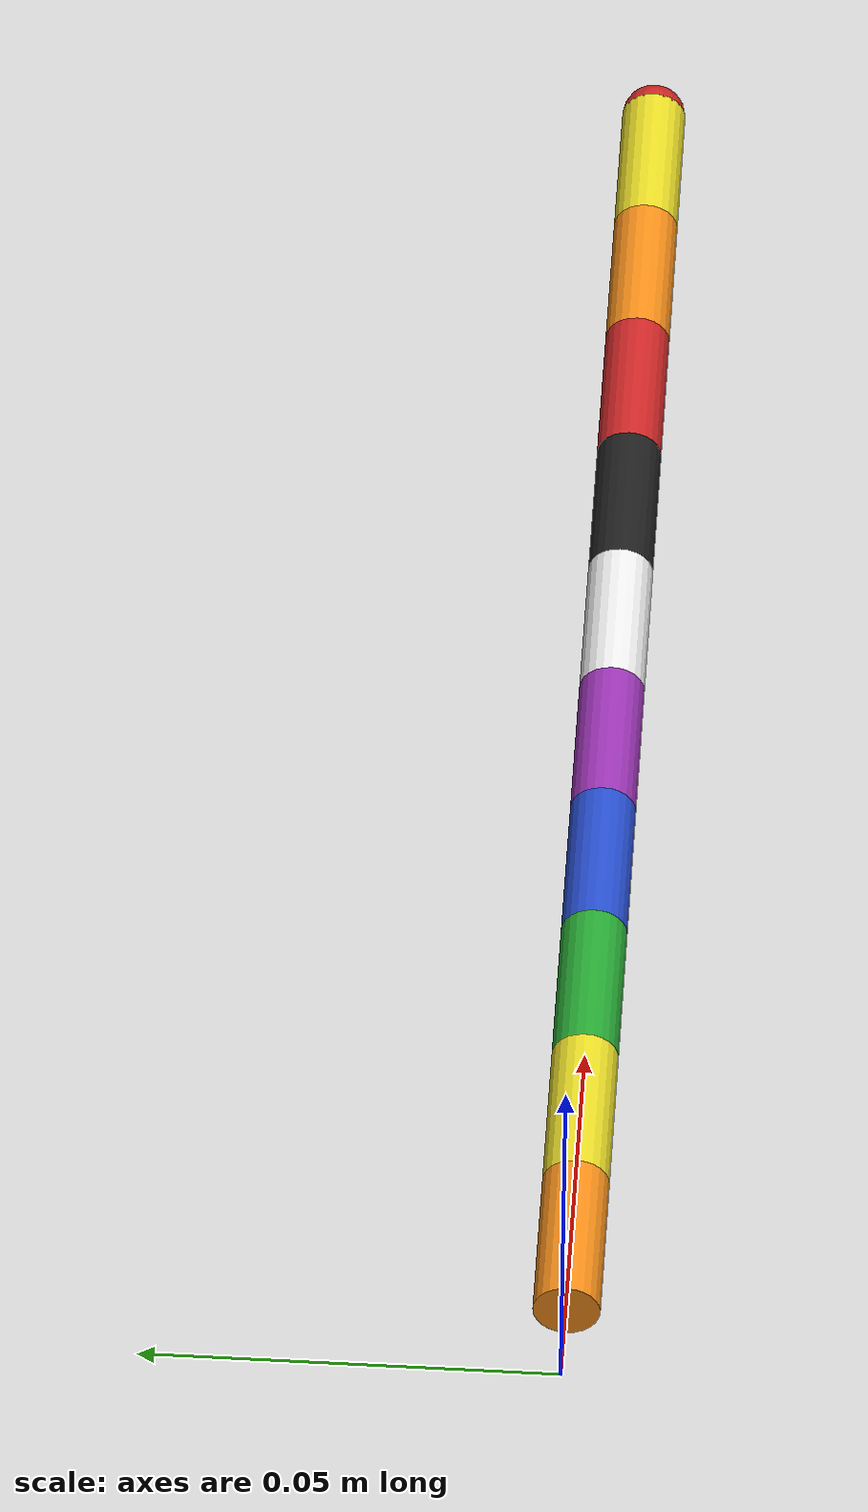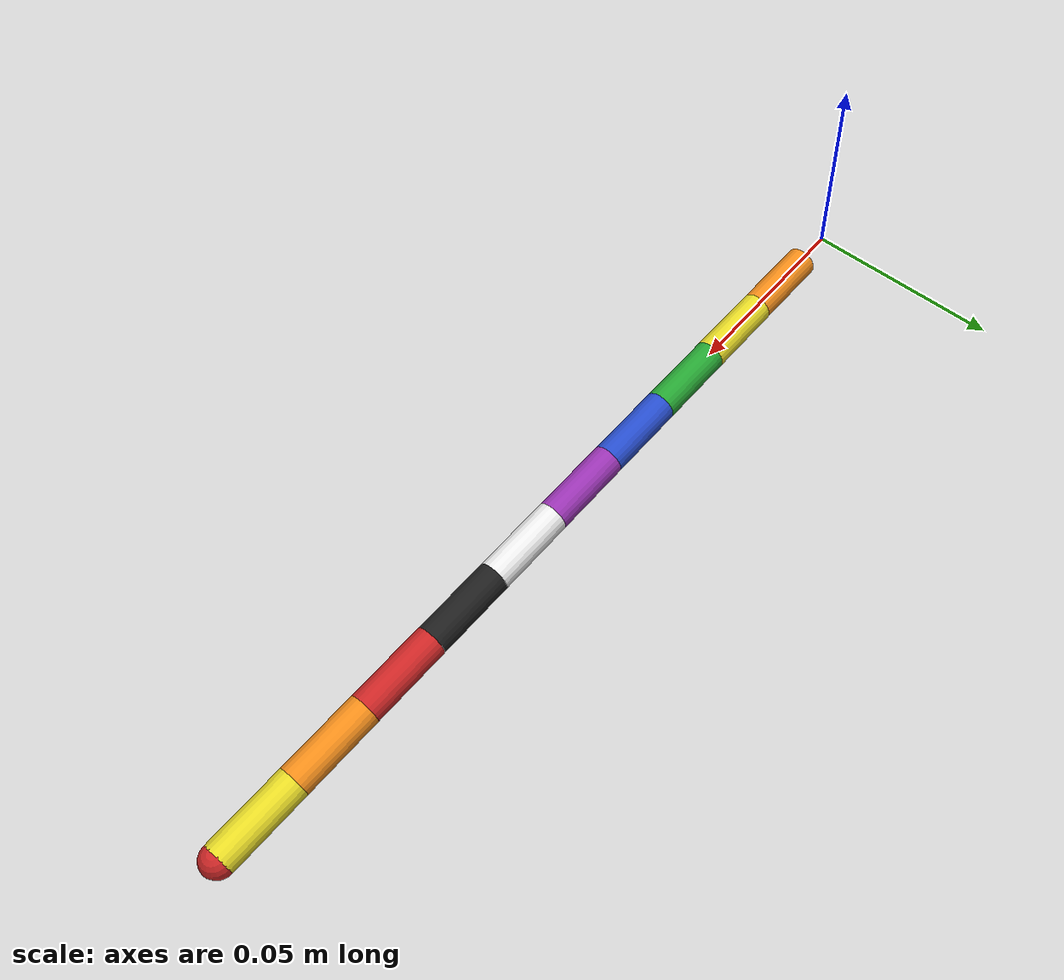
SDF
<sdf version="1.6">
    <model name="link_bot">
        <pose frame="">0 0 0 0 0 0</pose>

        <link name="link_1">
        <pose frame="">0.02 0 0 3.14159 -1.57079 3.14159</pose>
        <inertial>
            <pose frame="">0 0 0 0 0 0</pose>
            <mass>0.005
            </mass>
            <inertia>
                <ixx>1.8666666666666667e-07
                </ixx>
                <ixy>0</ixy>
                <ixz>0</ixz>
                <iyy>1.8666666666666667e-07
                </iyy>
                <iyz>0</iyz>
                <izz>4.0e-08
                </izz>
            </inertia>
        </inertial>
        <collision name="link_1_collision">
            <pose frame="">0 0 0 0 0 0</pose>
            <geometry>
                <cylinder>
                    <length>0.02</length>
                    <radius>0.004</radius>
                </cylinder>
            </geometry>
            <surface>
                <friction>
                    <ode>
                        <mu>0.10</mu>
                        <mu2>0.10</mu2>
                    </ode>
                </friction>
                <contact>
                    <ode>
                        <kp>1e15</kp>
                        <kd>1e13</kd>
                    </ode>
                </contact>
            </surface>
        </collision>

        <collision name="link_1_collision_ball1">
            <pose frame="">0 0 0.01 0 0 0</pose>
            <geometry>
                <sphere>
                    <radius>0.004</radius>
                </sphere>
            </geometry>
            <surface>
                <friction>
                    <ode>
                        <mu>0.10</mu>
                        <mu2>0.10</mu2>
                    </ode>
                </friction>
                <contact>
                    <ode>
                        <kp>1e15</kp>
                        <kd>1e13</kd>
                    </ode>
                </contact>
            </surface>
        </collision>

        <collision name="link_1_collision_ball2">
            <pose frame="">0 0 -0.01 0 0 0</pose>
            <geometry>
                <sphere>
                    <radius>0.004</radius>
                </sphere>
            </geometry>
            <surface>
                <friction>
                    <ode>
                        <mu>0.10</mu>
                        <mu2>0.10</mu2>
                    </ode>
                </friction>
                <contact>
                    <ode>
                        <kp>1e15</kp>
                        <kd>1e13</kd>
                        <max_vel>0</max_vel>
                    </ode>
                </contact>
            </surface>
        </collision>

        <visual name="link_1_visual">
            <cast_shadows>0</cast_shadows>
            <pose frame="">0 0 0 0 0 0</pose>
            <geometry>
                <cylinder>
                    <length>0.02
                    </length>
                    <radius>0.004
                    </radius>
                </cylinder>
            </geometry>
            <material>
                <script>
                    <name>Gazebo/Orange </name>
                    <uri>file://media/materials/scripts/gazebo.material</uri>
                </script>
            </material>
        </visual>
        <self_collide>1</self_collide>
        </link>

        <link name="link_2">
        <pose frame="">0.04 0 0 3.14159 -1.57079 3.14159</pose>
        <inertial>
            <pose frame="">0 0 0 0 0 0</pose>
            <mass>0.005
            </mass>
            <inertia>
                <ixx>1.8666666666666667e-07
                </ixx>
                <ixy>0</ixy>
                <ixz>0</ixz>
                <iyy>1.8666666666666667e-07
                </iyy>
                <iyz>0</iyz>
                <izz>4.0e-08
                </izz>
            </inertia>
        </inertial>
        <collision name="link_2_collision">
            <pose frame="">0 0 0 0 0 0</pose>
            <geometry>
                <cylinder>
                    <length>0.02</length>
                    <radius>0.004</radius>
                </cylinder>
            </geometry>
            <surface>
                <friction>
                    <ode>
                        <mu>0.10</mu>
                        <mu2>0.10</mu2>
                    </ode>
                </friction>
                <contact>
                    <ode>
                        <kp>1e15</kp>
                        <kd>1e13</kd>
                    </ode>
                </contact>
            </surface>
        </collision>

        <collision name="link_2_collision_ball1">
            <pose frame="">0 0 0.01 0 0 0</pose>
            <geometry>
                <sphere>
                    <radius>0.004</radius>
                </sphere>
            </geometry>
            <surface>
                <friction>
                    <ode>
                        <mu>0.10</mu>
                        <mu2>0.10</mu2>
                    </ode>
                </friction>
                <contact>
                    <ode>
                        <kp>1e15</kp>
                        <kd>1e13</kd>
                    </ode>
                </contact>
            </surface>
        </collision>

        <collision name="link_2_collision_ball2">
            <pose frame="">0 0 -0.01 0 0 0</pose>
            <geometry>
                <sphere>
                    <radius>0.004</radius>
                </sphere>
            </geometry>
            <surface>
                <friction>
                    <ode>
                        <mu>0.10</mu>
                        <mu2>0.10</mu2>
                    </ode>
                </friction>
                <contact>
                    <ode>
                        <kp>1e15</kp>
                        <kd>1e13</kd>
                        <max_vel>0</max_vel>
                    </ode>
                </contact>
            </surface>
        </collision>

        <visual name="link_2_visual">
            <cast_shadows>0</cast_shadows>
            <pose frame="">0 0 0 0 0 0</pose>
            <geometry>
                <cylinder>
                    <length>0.02
                    </length>
                    <radius>0.004
                    </radius>
                </cylinder>
            </geometry>
            <material>
                <script>
                    <name>Gazebo/Yellow </name>
                    <uri>file://media/materials/scripts/gazebo.material</uri>
                </script>
            </material>
        </visual>
        <self_collide>1</self_collide>
        </link>

        <link name="link_3">
        <pose frame="">0.06 0 0 3.14159 -1.57079 3.14159</pose>
        <inertial>
            <pose frame="">0 0 0 0 0 0</pose>
            <mass>0.005
            </mass>
            <inertia>
                <ixx>1.8666666666666667e-07
                </ixx>
                <ixy>0</ixy>
                <ixz>0</ixz>
                <iyy>1.8666666666666667e-07
                </iyy>
                <iyz>0</iyz>
                <izz>4.0e-08
                </izz>
            </inertia>
        </inertial>
        <collision name="link_3_collision">
            <pose frame="">0 0 0 0 0 0</pose>
            <geometry>
                <cylinder>
                    <length>0.02</length>
                    <radius>0.004</radius>
                </cylinder>
            </geometry>
            <surface>
                <friction>
                    <ode>
                        <mu>0.10</mu>
                        <mu2>0.10</mu2>
                    </ode>
                </friction>
                <contact>
                    <ode>
                        <kp>1e15</kp>
                        <kd>1e13</kd>
                    </ode>
                </contact>
            </surface>
        </collision>

        <collision name="link_3_collision_ball1">
            <pose frame="">0 0 0.01 0 0 0</pose>
            <geometry>
                <sphere>
                    <radius>0.004</radius>
                </sphere>
            </geometry>
            <surface>
                <friction>
                    <ode>
                        <mu>0.10</mu>
                        <mu2>0.10</mu2>
                    </ode>
                </friction>
                <contact>
                    <ode>
                        <kp>1e15</kp>
                        <kd>1e13</kd>
                    </ode>
                </contact>
            </surface>
        </collision>

        <collision name="link_3_collision_ball2">
            <pose frame="">0 0 -0.01 0 0 0</pose>
            <geometry>
                <sphere>
                    <radius>0.004</radius>
                </sphere>
            </geometry>
            <surface>
                <friction>
                    <ode>
                        <mu>0.10</mu>
                        <mu2>0.10</mu2>
                    </ode>
                </friction>
                <contact>
                    <ode>
                        <kp>1e15</kp>
                        <kd>1e13</kd>
                        <max_vel>0</max_vel>
                    </ode>
                </contact>
            </surface>
        </collision>

        <visual name="link_3_visual">
            <cast_shadows>0</cast_shadows>
            <pose frame="">0 0 0 0 0 0</pose>
            <geometry>
                <cylinder>
                    <length>0.02
                    </length>
                    <radius>0.004
                    </radius>
                </cylinder>
            </geometry>
            <material>
                <script>
                    <name>Gazebo/Green </name>
                    <uri>file://media/materials/scripts/gazebo.material</uri>
                </script>
            </material>
        </visual>
        <self_collide>1</self_collide>
        </link>

        <link name="link_4">
        <pose frame="">0.08 0 0 3.14159 -1.57079 3.14159</pose>
        <inertial>
            <pose frame="">0 0 0 0 0 0</pose>
            <mass>0.005
            </mass>
            <inertia>
                <ixx>1.8666666666666667e-07
                </ixx>
                <ixy>0</ixy>
                <ixz>0</ixz>
                <iyy>1.8666666666666667e-07
                </iyy>
                <iyz>0</iyz>
                <izz>4.0e-08
                </izz>
            </inertia>
        </inertial>
        <collision name="link_4_collision">
            <pose frame="">0 0 0 0 0 0</pose>
            <geometry>
                <cylinder>
                    <length>0.02</length>
                    <radius>0.004</radius>
                </cylinder>
            </geometry>
            <surface>
                <friction>
                    <ode>
                        <mu>0.10</mu>
                        <mu2>0.10</mu2>
                    </ode>
                </friction>
                <contact>
                    <ode>
                        <kp>1e15</kp>
                        <kd>1e13</kd>
                    </ode>
                </contact>
            </surface>
        </collision>

        <collision name="link_4_collision_ball1">
            <pose frame="">0 0 0.01 0 0 0</pose>
            <geometry>
                <sphere>
                    <radius>0.004</radius>
                </sphere>
            </geometry>
            <surface>
                <friction>
                    <ode>
                        <mu>0.10</mu>
                        <mu2>0.10</mu2>
                    </ode>
                </friction>
                <contact>
                    <ode>
                        <kp>1e15</kp>
                        <kd>1e13</kd>
                    </ode>
                </contact>
            </surface>
        </collision>

        <collision name="link_4_collision_ball2">
            <pose frame="">0 0 -0.01 0 0 0</pose>
            <geometry>
                <sphere>
                    <radius>0.004</radius>
                </sphere>
            </geometry>
            <surface>
                <friction>
                    <ode>
                        <mu>0.10</mu>
                        <mu2>0.10</mu2>
                    </ode>
                </friction>
                <contact>
                    <ode>
                        <kp>1e15</kp>
                        <kd>1e13</kd>
                        <max_vel>0</max_vel>
                    </ode>
                </contact>
            </surface>
        </collision>

        <visual name="link_4_visual">
            <cast_shadows>0</cast_shadows>
            <pose frame="">0 0 0 0 0 0</pose>
            <geometry>
                <cylinder>
                    <length>0.02
                    </length>
                    <radius>0.004
                    </radius>
                </cylinder>
            </geometry>
            <material>
                <script>
                    <name>Gazebo/Blue </name>
                    <uri>file://media/materials/scripts/gazebo.material</uri>
                </script>
            </material>
        </visual>
        <self_collide>1</self_collide>
        </link>

        <link name="link_5">
        <pose frame="">0.1 0 0 3.14159 -1.57079 3.14159</pose>
        <inertial>
            <pose frame="">0 0 0 0 0 0</pose>
            <mass>0.005
            </mass>
            <inertia>
                <ixx>1.8666666666666667e-07
                </ixx>
                <ixy>0</ixy>
                <ixz>0</ixz>
                <iyy>1.8666666666666667e-07
                </iyy>
                <iyz>0</iyz>
                <izz>4.0e-08
                </izz>
            </inertia>
        </inertial>
        <collision name="link_5_collision">
            <pose frame="">0 0 0 0 0 0</pose>
            <geometry>
                <cylinder>
                    <length>0.02</length>
                    <radius>0.004</radius>
                </cylinder>
            </geometry>
            <surface>
                <friction>
                    <ode>
                        <mu>0.10</mu>
                        <mu2>0.10</mu2>
                    </ode>
                </friction>
                <contact>
                    <ode>
                        <kp>1e15</kp>
                        <kd>1e13</kd>
                    </ode>
                </contact>
            </surface>
        </collision>

        <collision name="link_5_collision_ball1">
            <pose frame="">0 0 0.01 0 0 0</pose>
            <geometry>
                <sphere>
                    <radius>0.004</radius>
                </sphere>
            </geometry>
            <surface>
                <friction>
                    <ode>
                        <mu>0.10</mu>
                        <mu2>0.10</mu2>
                    </ode>
                </friction>
                <contact>
                    <ode>
                        <kp>1e15</kp>
                        <kd>1e13</kd>
                    </ode>
                </contact>
            </surface>
        </collision>

        <collision name="link_5_collision_ball2">
            <pose frame="">0 0 -0.01 0 0 0</pose>
            <geometry>
                <sphere>
                    <radius>0.004</radius>
                </sphere>
            </geometry>
            <surface>
                <friction>
                    <ode>
                        <mu>0.10</mu>
                        <mu2>0.10</mu2>
                    </ode>
                </friction>
                <contact>
                    <ode>
                        <kp>1e15</kp>
                        <kd>1e13</kd>
                        <max_vel>0</max_vel>
                    </ode>
                </contact>
            </surface>
        </collision>

        <visual name="link_5_visual">
            <cast_shadows>0</cast_shadows>
            <pose frame="">0 0 0 0 0 0</pose>
            <geometry>
                <cylinder>
                    <length>0.02
                    </length>
                    <radius>0.004
                    </radius>
                </cylinder>
            </geometry>
            <material>
                <script>
                    <name>Gazebo/Purple </name>
                    <uri>file://media/materials/scripts/gazebo.material</uri>
                </script>
            </material>
        </visual>
        <self_collide>1</self_collide>
        </link>

        <link name="link_6">
        <pose frame="">0.12 0 0 3.14159 -1.57079 3.14159</pose>
        <inertial>
            <pose frame="">0 0 0 0 0 0</pose>
            <mass>0.005
            </mass>
            <inertia>
                <ixx>1.8666666666666667e-07
                </ixx>
                <ixy>0</ixy>
                <ixz>0</ixz>
                <iyy>1.8666666666666667e-07
                </iyy>
                <iyz>0</iyz>
                <izz>4.0e-08
                </izz>
            </inertia>
        </inertial>
        <collision name="link_6_collision">
            <pose frame="">0 0 0 0 0 0</pose>
            <geometry>
                <cylinder>
                    <length>0.02</length>
                    <radius>0.004</radius>
                </cylinder>
            </geometry>
            <surface>
                <friction>
                    <ode>
                        <mu>0.10</mu>
                        <mu2>0.10</mu2>
                    </ode>
                </friction>
                <contact>
                    <ode>
                        <kp>1e15</kp>
                        <kd>1e13</kd>
                    </ode>
                </contact>
            </surface>
        </collision>

        <collision name="link_6_collision_ball1">
            <pose frame="">0 0 0.01 0 0 0</pose>
            <geometry>
                <sphere>
                    <radius>0.004</radius>
                </sphere>
            </geometry>
            <surface>
                <friction>
                    <ode>
                        <mu>0.10</mu>
                        <mu2>0.10</mu2>
                    </ode>
                </friction>
                <contact>
                    <ode>
                        <kp>1e15</kp>
                        <kd>1e13</kd>
                    </ode>
                </contact>
            </surface>
        </collision>

        <collision name="link_6_collision_ball2">
            <pose frame="">0 0 -0.01 0 0 0</pose>
            <geometry>
                <sphere>
                    <radius>0.004</radius>
                </sphere>
            </geometry>
            <surface>
                <friction>
                    <ode>
                        <mu>0.10</mu>
                        <mu2>0.10</mu2>
                    </ode>
                </friction>
                <contact>
                    <ode>
                        <kp>1e15</kp>
                        <kd>1e13</kd>
                        <max_vel>0</max_vel>
                    </ode>
                </contact>
            </surface>
        </collision>

        <visual name="link_6_visual">
            <cast_shadows>0</cast_shadows>
            <pose frame="">0 0 0 0 0 0</pose>
            <geometry>
                <cylinder>
                    <length>0.02
                    </length>
                    <radius>0.004
                    </radius>
                </cylinder>
            </geometry>
            <material>
                <script>
                    <name>Gazebo/White </name>
                    <uri>file://media/materials/scripts/gazebo.material</uri>
                </script>
            </material>
        </visual>
        <self_collide>1</self_collide>
        </link>

        <link name="link_7">
        <pose frame="">0.14 0 0 3.14159 -1.57079 3.14159</pose>
        <inertial>
            <pose frame="">0 0 0 0 0 0</pose>
            <mass>0.005
            </mass>
            <inertia>
                <ixx>1.8666666666666667e-07
                </ixx>
                <ixy>0</ixy>
                <ixz>0</ixz>
                <iyy>1.8666666666666667e-07
                </iyy>
                <iyz>0</iyz>
                <izz>4.0e-08
                </izz>
            </inertia>
        </inertial>
        <collision name="link_7_collision">
            <pose frame="">0 0 0 0 0 0</pose>
            <geometry>
                <cylinder>
                    <length>0.02</length>
                    <radius>0.004</radius>
                </cylinder>
            </geometry>
            <surface>
                <friction>
                    <ode>
                        <mu>0.10</mu>
                        <mu2>0.10</mu2>
                    </ode>
                </friction>
                <contact>
                    <ode>
                        <kp>1e15</kp>
                        <kd>1e13</kd>
                    </ode>
                </contact>
            </surface>
        </collision>

        <collision name="link_7_collision_ball1">
            <pose frame="">0 0 0.01 0 0 0</pose>
            <geometry>
                <sphere>
                    <radius>0.004</radius>
                </sphere>
            </geometry>
            <surface>
                <friction>
                    <ode>
                        <mu>0.10</mu>
                        <mu2>0.10</mu2>
                    </ode>
                </friction>
                <contact>
                    <ode>
                        <kp>1e15</kp>
                        <kd>1e13</kd>
                    </ode>
                </contact>
            </surface>
        </collision>

        <collision name="link_7_collision_ball2">
            <pose frame="">0 0 -0.01 0 0 0</pose>
            <geometry>
                <sphere>
                    <radius>0.004</radius>
                </sphere>
            </geometry>
            <surface>
                <friction>
                    <ode>
                        <mu>0.10</mu>
                        <mu2>0.10</mu2>
                    </ode>
                </friction>
                <contact>
                    <ode>
                        <kp>1e15</kp>
                        <kd>1e13</kd>
                        <max_vel>0</max_vel>
                    </ode>
                </contact>
            </surface>
        </collision>

        <visual name="link_7_visual">
            <cast_shadows>0</cast_shadows>
            <pose frame="">0 0 0 0 0 0</pose>
            <geometry>
                <cylinder>
                    <length>0.02
                    </length>
                    <radius>0.004
                    </radius>
                </cylinder>
            </geometry>
            <material>
                <script>
                    <name>Gazebo/Black </name>
                    <uri>file://media/materials/scripts/gazebo.material</uri>
                </script>
            </material>
        </visual>
        <self_collide>1</self_collide>
        </link>

        <link name="link_8">
        <pose frame="">0.16 0 0 3.14159 -1.57079 3.14159</pose>
        <inertial>
            <pose frame="">0 0 0 0 0 0</pose>
            <mass>0.005
            </mass>
            <inertia>
                <ixx>1.8666666666666667e-07
                </ixx>
                <ixy>0</ixy>
                <ixz>0</ixz>
                <iyy>1.8666666666666667e-07
                </iyy>
                <iyz>0</iyz>
                <izz>4.0e-08
                </izz>
            </inertia>
        </inertial>
        <collision name="link_8_collision">
            <pose frame="">0 0 0 0 0 0</pose>
            <geometry>
                <cylinder>
                    <length>0.02</length>
                    <radius>0.004</radius>
                </cylinder>
            </geometry>
            <surface>
                <friction>
                    <ode>
                        <mu>0.10</mu>
                        <mu2>0.10</mu2>
                    </ode>
                </friction>
                <contact>
                    <ode>
                        <kp>1e15</kp>
                        <kd>1e13</kd>
                    </ode>
                </contact>
            </surface>
        </collision>

        <collision name="link_8_collision_ball1">
            <pose frame="">0 0 0.01 0 0 0</pose>
            <geometry>
                <sphere>
                    <radius>0.004</radius>
                </sphere>
            </geometry>
            <surface>
                <friction>
                    <ode>
                        <mu>0.10</mu>
                        <mu2>0.10</mu2>
                    </ode>
                </friction>
                <contact>
                    <ode>
                        <kp>1e15</kp>
                        <kd>1e13</kd>
                    </ode>
                </contact>
            </surface>
        </collision>

        <collision name="link_8_collision_ball2">
            <pose frame="">0 0 -0.01 0 0 0</pose>
            <geometry>
                <sphere>
                    <radius>0.004</radius>
                </sphere>
            </geometry>
            <surface>
                <friction>
                    <ode>
                        <mu>0.10</mu>
                        <mu2>0.10</mu2>
                    </ode>
                </friction>
                <contact>
                    <ode>
                        <kp>1e15</kp>
                        <kd>1e13</kd>
                        <max_vel>0</max_vel>
                    </ode>
                </contact>
            </surface>
        </collision>

        <visual name="link_8_visual">
            <cast_shadows>0</cast_shadows>
            <pose frame="">0 0 0 0 0 0</pose>
            <geometry>
                <cylinder>
                    <length>0.02
                    </length>
                    <radius>0.004
                    </radius>
                </cylinder>
            </geometry>
            <material>
                <script>
                    <name>Gazebo/Red </name>
                    <uri>file://media/materials/scripts/gazebo.material</uri>
                </script>
            </material>
        </visual>
        <self_collide>1</self_collide>
        </link>

        <link name="link_9">
        <pose frame="">0.18 0 0 3.14159 -1.57079 3.14159</pose>
        <inertial>
            <pose frame="">0 0 0 0 0 0</pose>
            <mass>0.005
            </mass>
            <inertia>
                <ixx>1.8666666666666667e-07
                </ixx>
                <ixy>0</ixy>
                <ixz>0</ixz>
                <iyy>1.8666666666666667e-07
                </iyy>
                <iyz>0</iyz>
                <izz>4.0e-08
                </izz>
            </inertia>
        </inertial>
        <collision name="link_9_collision">
            <pose frame="">0 0 0 0 0 0</pose>
            <geometry>
                <cylinder>
                    <length>0.02</length>
                    <radius>0.004</radius>
                </cylinder>
            </geometry>
            <surface>
                <friction>
                    <ode>
                        <mu>0.10</mu>
                        <mu2>0.10</mu2>
                    </ode>
                </friction>
                <contact>
                    <ode>
                        <kp>1e15</kp>
                        <kd>1e13</kd>
                    </ode>
                </contact>
            </surface>
        </collision>

        <collision name="link_9_collision_ball1">
            <pose frame="">0 0 0.01 0 0 0</pose>
            <geometry>
                <sphere>
                    <radius>0.004</radius>
                </sphere>
            </geometry>
            <surface>
                <friction>
                    <ode>
                        <mu>0.10</mu>
                        <mu2>0.10</mu2>
                    </ode>
                </friction>
                <contact>
                    <ode>
                        <kp>1e15</kp>
                        <kd>1e13</kd>
                    </ode>
                </contact>
            </surface>
        </collision>

        <collision name="link_9_collision_ball2">
            <pose frame="">0 0 -0.01 0 0 0</pose>
            <geometry>
                <sphere>
                    <radius>0.004</radius>
                </sphere>
            </geometry>
            <surface>
                <friction>
                    <ode>
                        <mu>0.10</mu>
                        <mu2>0.10</mu2>
                    </ode>
                </friction>
                <contact>
                    <ode>
                        <kp>1e15</kp>
                        <kd>1e13</kd>
                        <max_vel>0</max_vel>
                    </ode>
                </contact>
            </surface>
        </collision>

        <visual name="link_9_visual">
            <cast_shadows>0</cast_shadows>
            <pose frame="">0 0 0 0 0 0</pose>
            <geometry>
                <cylinder>
                    <length>0.02
                    </length>
                    <radius>0.004
                    </radius>
                </cylinder>
            </geometry>
            <material>
                <script>
                    <name>Gazebo/Orange </name>
                    <uri>file://media/materials/scripts/gazebo.material</uri>
                </script>
            </material>
        </visual>
        <self_collide>1</self_collide>
        </link>

        <link name="link_10">
        <pose frame="">0.2 0 0 3.14159 -1.57079 3.14159</pose>
        <inertial>
            <pose frame="">0 0 0 0 0 0</pose>
            <mass>0.005
            </mass>
            <inertia>
                <ixx>1.8666666666666667e-07
                </ixx>
                <ixy>0</ixy>
                <ixz>0</ixz>
                <iyy>1.8666666666666667e-07
                </iyy>
                <iyz>0</iyz>
                <izz>4.0e-08
                </izz>
            </inertia>
        </inertial>
        <collision name="link_10_collision">
            <pose frame="">0 0 0 0 0 0</pose>
            <geometry>
                <cylinder>
                    <length>0.02</length>
                    <radius>0.004</radius>
                </cylinder>
            </geometry>
            <surface>
                <friction>
                    <ode>
                        <mu>0.10</mu>
                        <mu2>0.10</mu2>
                    </ode>
                </friction>
                <contact>
                    <ode>
                        <kp>1e15</kp>
                        <kd>1e13</kd>
                    </ode>
                </contact>
            </surface>
        </collision>

        <collision name="link_10_collision_ball1">
            <pose frame="">0 0 0.01 0 0 0</pose>
            <geometry>
                <sphere>
                    <radius>0.004</radius>
                </sphere>
            </geometry>
            <surface>
                <friction>
                    <ode>
                        <mu>0.10</mu>
                        <mu2>0.10</mu2>
                    </ode>
                </friction>
                <contact>
                    <ode>
                        <kp>1e15</kp>
                        <kd>1e13</kd>
                    </ode>
                </contact>
            </surface>
        </collision>

        <collision name="link_10_collision_ball2">
            <pose frame="">0 0 -0.01 0 0 0</pose>
            <geometry>
                <sphere>
                    <radius>0.004</radius>
                </sphere>
            </geometry>
            <surface>
                <friction>
                    <ode>
                        <mu>0.10</mu>
                        <mu2>0.10</mu2>
                    </ode>
                </friction>
                <contact>
                    <ode>
                        <kp>1e15</kp>
                        <kd>1e13</kd>
                        <max_vel>0</max_vel>
                    </ode>
                </contact>
            </surface>
        </collision>

        <visual name="link_10_visual">
            <cast_shadows>0</cast_shadows>
            <pose frame="">0 0 0 0 0 0</pose>
            <geometry>
                <cylinder>
                    <length>0.02
                    </length>
                    <radius>0.004
                    </radius>
                </cylinder>
            </geometry>
            <material>
                <script>
                    <name>Gazebo/Yellow </name>
                    <uri>file://media/materials/scripts/gazebo.material</uri>
                </script>
            </material>
        </visual>
        <self_collide>1</self_collide>
        </link>

        <joint name="joint_1" type="universal">
            <child>link_2</child>
            <parent>link_1</parent>
            <pose>0 0 0.01 0 0 0 </pose>
            <axis>
                <xyz>0 0 1</xyz>
                <limit>
                    <lower>-2.0</lower>
                    <upper>2.0</upper>
                    <effort>10</effort>
                    <velocity>5</velocity>
                </limit>
                <dynamics>
                    <damping>0.0001</damping>
                    <friction>0</friction>
                </dynamics>
                <use_parent_model_frame>1</use_parent_model_frame>
            </axis>
            <axis2>
                <xyz>0 1 0</xyz>
                <limit>
                    <lower>-2.0</lower>
                    <upper>2.0</upper>
                    <effort>10</effort>
                    <velocity>5</velocity>
                </limit>
                <dynamics>
                    <damping>0.0001</damping>
                    <friction>0</friction>
                </dynamics>
                <use_parent_model_frame>1</use_parent_model_frame>
            </axis2>
            <physics>
                <ode>
                </ode>
            </physics>
        </joint>

        <joint name="joint_2" type="universal">
            <child>link_3</child>
            <parent>link_2</parent>
            <pose>0 0 0.01 0 0 0 </pose>
            <axis>
                <xyz>0 0 1</xyz>
                <limit>
                    <lower>-2.0</lower>
                    <upper>2.0</upper>
                    <effort>10</effort>
                    <velocity>5</velocity>
                </limit>
                <dynamics>
                    <damping>0.0001</damping>
                    <friction>0</friction>
                </dynamics>
                <use_parent_model_frame>1</use_parent_model_frame>
            </axis>
            <axis2>
                <xyz>0 1 0</xyz>
                <limit>
                    <lower>-2.0</lower>
                    <upper>2.0</upper>
                    <effort>10</effort>
                    <velocity>5</velocity>
                </limit>
                <dynamics>
                    <damping>0.0001</damping>
                    <friction>0</friction>
                </dynamics>
                <use_parent_model_frame>1</use_parent_model_frame>
            </axis2>
            <physics>
                <ode>
                </ode>
            </physics>
        </joint>

        <joint name="joint_3" type="universal">
            <child>link_4</child>
            <parent>link_3</parent>
            <pose>0 0 0.01 0 0 0 </pose>
            <axis>
                <xyz>0 0 1</xyz>
                <limit>
                    <lower>-2.0</lower>
                    <upper>2.0</upper>
                    <effort>10</effort>
                    <velocity>5</velocity>
                </limit>
                <dynamics>
                    <damping>0.0001</damping>
                    <friction>0</friction>
                </dynamics>
                <use_parent_model_frame>1</use_parent_model_frame>
            </axis>
            <axis2>
                <xyz>0 1 0</xyz>
                <limit>
                    <lower>-2.0</lower>
                    <upper>2.0</upper>
                    <effort>10</effort>
                    <velocity>5</velocity>
                </limit>
                <dynamics>
                    <damping>0.0001</damping>
                    <friction>0</friction>
                </dynamics>
                <use_parent_model_frame>1</use_parent_model_frame>
            </axis2>
            <physics>
                <ode>
                </ode>
            </physics>
        </joint>

        <joint name="joint_4" type="universal">
            <child>link_5</child>
            <parent>link_4</parent>
            <pose>0 0 0.01 0 0 0 </pose>
            <axis>
                <xyz>0 0 1</xyz>
                <limit>
                    <lower>-2.0</lower>
                    <upper>2.0</upper>
                    <effort>10</effort>
                    <velocity>5</velocity>
                </limit>
                <dynamics>
                    <damping>0.0001</damping>
                    <friction>0</friction>
                </dynamics>
                <use_parent_model_frame>1</use_parent_model_frame>
            </axis>
            <axis2>
                <xyz>0 1 0</xyz>
                <limit>
                    <lower>-2.0</lower>
                    <upper>2.0</upper>
                    <effort>10</effort>
                    <velocity>5</velocity>
                </limit>
                <dynamics>
                    <damping>0.0001</damping>
                    <friction>0</friction>
                </dynamics>
                <use_parent_model_frame>1</use_parent_model_frame>
            </axis2>
            <physics>
                <ode>
                </ode>
            </physics>
        </joint>

        <joint name="joint_5" type="universal">
            <child>link_6</child>
            <parent>link_5</parent>
            <pose>0 0 0.01 0 0 0 </pose>
            <axis>
                <xyz>0 0 1</xyz>
                <limit>
                    <lower>-2.0</lower>
                    <upper>2.0</upper>
                    <effort>10</effort>
                    <velocity>5</velocity>
                </limit>
                <dynamics>
                    <damping>0.0001</damping>
                    <friction>0</friction>
                </dynamics>
                <use_parent_model_frame>1</use_parent_model_frame>
            </axis>
            <axis2>
                <xyz>0 1 0</xyz>
                <limit>
                    <lower>-2.0</lower>
                    <upper>2.0</upper>
                    <effort>10</effort>
                    <velocity>5</velocity>
                </limit>
                <dynamics>
                    <damping>0.0001</damping>
                    <friction>0</friction>
                </dynamics>
                <use_parent_model_frame>1</use_parent_model_frame>
            </axis2>
            <physics>
                <ode>
                </ode>
            </physics>
        </joint>

        <joint name="joint_6" type="universal">
            <child>link_7</child>
            <parent>link_6</parent>
            <pose>0 0 0.01 0 0 0 </pose>
            <axis>
                <xyz>0 0 1</xyz>
                <limit>
                    <lower>-2.0</lower>
                    <upper>2.0</upper>
                    <effort>10</effort>
                    <velocity>5</velocity>
                </limit>
                <dynamics>
                    <damping>0.0001</damping>
                    <friction>0</friction>
                </dynamics>
                <use_parent_model_frame>1</use_parent_model_frame>
            </axis>
            <axis2>
                <xyz>0 1 0</xyz>
                <limit>
                    <lower>-2.0</lower>
                    <upper>2.0</upper>
                    <effort>10</effort>
                    <velocity>5</velocity>
                </limit>
                <dynamics>
                    <damping>0.0001</damping>
                    <friction>0</friction>
                </dynamics>
                <use_parent_model_frame>1</use_parent_model_frame>
            </axis2>
            <physics>
                <ode>
                </ode>
            </physics>
        </joint>

        <joint name="joint_7" type="universal">
            <child>link_8</child>
            <parent>link_7</parent>
            <pose>0 0 0.01 0 0 0 </pose>
            <axis>
                <xyz>0 0 1</xyz>
                <limit>
                    <lower>-2.0</lower>
                    <upper>2.0</upper>
                    <effort>10</effort>
                    <velocity>5</velocity>
                </limit>
                <dynamics>
                    <damping>0.0001</damping>
                    <friction>0</friction>
                </dynamics>
                <use_parent_model_frame>1</use_parent_model_frame>
            </axis>
            <axis2>
                <xyz>0 1 0</xyz>
                <limit>
                    <lower>-2.0</lower>
                    <upper>2.0</upper>
                    <effort>10</effort>
                    <velocity>5</velocity>
                </limit>
                <dynamics>
                    <damping>0.0001</damping>
                    <friction>0</friction>
                </dynamics>
                <use_parent_model_frame>1</use_parent_model_frame>
            </axis2>
            <physics>
                <ode>
                </ode>
            </physics>
        </joint>

        <joint name="joint_8" type="universal">
            <child>link_9</child>
            <parent>link_8</parent>
            <pose>0 0 0.01 0 0 0 </pose>
            <axis>
                <xyz>0 0 1</xyz>
                <limit>
                    <lower>-2.0</lower>
                    <upper>2.0</upper>
                    <effort>10</effort>
                    <velocity>5</velocity>
                </limit>
                <dynamics>
                    <damping>0.0001</damping>
                    <friction>0</friction>
                </dynamics>
                <use_parent_model_frame>1</use_parent_model_frame>
            </axis>
            <axis2>
                <xyz>0 1 0</xyz>
                <limit>
                    <lower>-2.0</lower>
                    <upper>2.0</upper>
                    <effort>10</effort>
                    <velocity>5</velocity>
                </limit>
                <dynamics>
                    <damping>0.0001</damping>
                    <friction>0</friction>
                </dynamics>
                <use_parent_model_frame>1</use_parent_model_frame>
            </axis2>
            <physics>
                <ode>
                </ode>
            </physics>
        </joint>

        <joint name="joint_9" type="universal">
            <child>link_10</child>
            <parent>link_9</parent>
            <pose>0 0 0.01 0 0 0 </pose>
            <axis>
                <xyz>0 0 1</xyz>
                <limit>
                    <lower>-2.0</lower>
                    <upper>2.0</upper>
                    <effort>10</effort>
                    <velocity>5</velocity>
                </limit>
                <dynamics>
                    <damping>0.0001</damping>
                    <friction>0</friction>
                </dynamics>
                <use_parent_model_frame>1</use_parent_model_frame>
            </axis>
            <axis2>
                <xyz>0 1 0</xyz>
                <limit>
                    <lower>-2.0</lower>
                    <upper>2.0</upper>
                    <effort>10</effort>
                    <velocity>5</velocity>
                </limit>
                <dynamics>
                    <damping>0.0001</damping>
                    <friction>0</friction>
                </dynamics>
                <use_parent_model_frame>1</use_parent_model_frame>
            </axis2>
            <physics>
                <ode>
                </ode>
            </physics>
        </joint>

        <link name='head'>
            <kinematic>true</kinematic>
            <pose frame=''>0.21000000000000002 0 0 0 0 0 </pose>
            <inertial>
                <pose frame=''>0 0 0 0 0 0</pose>
                <mass>0.1</mass>
                <inertia>
                    <ixx>0.0001</ixx>
                    <ixy>0</ixy>
                    <ixz>0</ixz>
                    <iyy>0.0001</iyy>
                    <iyz>0</iyz>
                    <izz>0.001</izz>
                </inertia>
            </inertial>
            <collision name='head_collision'>
                <pose frame=''>0 0 0 0 0 0</pose>
                <geometry>
                    <sphere>
                        <radius>0.004 </radius>
                    </sphere>
                </geometry>
                <surface>
                    <contact>
                        <ode>
                            <kp>1e15</kp>
                            <kd>1e13</kd>
                        </ode>
                    </contact>
                    <friction>
                        <ode>
                            <mu>0.0</mu>
                            <mu2>0.0</mu2>
                        </ode>
                    </friction>
                </surface>
            </collision>
            <visual name='head_visual'>
                <cast_shadows>0</cast_shadows>
                <pose frame=''>0 0 0 0 0 0</pose>
                <geometry>
                    <sphere>
                        <radius>0.004
                        </radius>
                    </sphere>
                </geometry>
                <material>
                    <script>
                        <name>Gazebo/Red</name>
                        <uri>file://media/materials/scripts/gazebo.material</uri>
                    </script>
                </material>
            </visual>
            <self_collide>1</self_collide>
        </link>
        <joint name="head_joint" type="universal">
            <child>head</child>
            <parent>link_10</parent>
            <pose>0 0 0 0 0 0</pose>
            <axis>
                <xyz>0 0 1</xyz>
                <dynamics>
                    <damping>0.001</damping>
                    <friction>1.0</friction>
                </dynamics>
            </axis>
            <axis2>
                <xyz>0 1 0</xyz>
                <dynamics>
                    <damping>0.001</damping>
                    <friction>1.0</friction>
                </dynamics>
            </axis2>
            <physics>
                <ode>
                    <cfm_damping>true</cfm_damping>
                    <limit>
                        <cfm>100</cfm>
                    </limit>
                </ode>
            </physics>
        </joint>
        <plugin name='rope_plugin' filename='librope_plugin.so'>
            <num_links>10</num_links>
            <rope_length>0.2</rope_length>
        </plugin>
        <plugin name='position_3d_plugin' filename='libposition_3d_plugin.so'>
            <object_name>gripper</object_name>
            <gravity_compensation>true</gravity_compensation>
            <kP_pos>5</kP_pos>
            <kD_pos>0.0</kD_pos>
            <kP_vel>200.0</kP_vel>
            <kI_vel>0.05</kI_vel>
            <kD_vel>0.0</kD_vel>
            <max_force>2.0</max_force>
            <max_vel>0.15</max_vel>
            <kP_rot>0.0</kP_rot>
            <kI_rot>0.0</kI_rot>
            <kD_rot>0.0</kD_rot>
            <kP_rot_vel>0.0</kP_rot_vel>
            <kI_rot_vel>0.0</kI_rot_vel>
            <kD_rot_vel>0.0</kD_rot_vel>
            <max_torque>0.0</max_torque>
            <max_rot_vel>0.0</max_rot_vel>
            <link>head</link>
        </plugin>
    </model>
</sdf>
